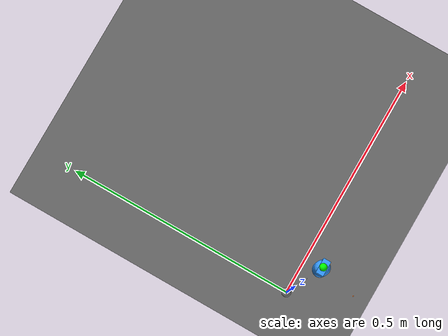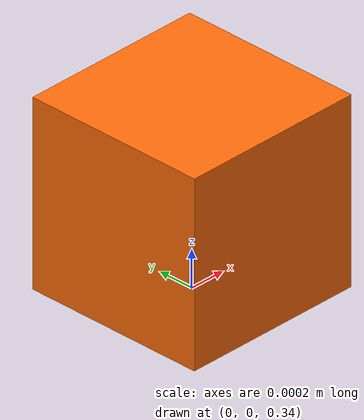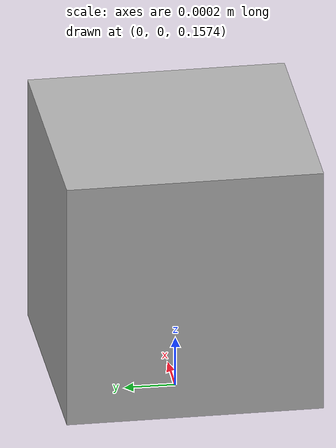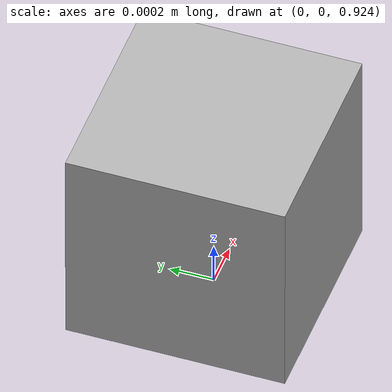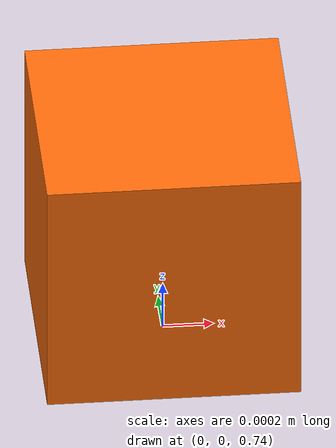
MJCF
<mujoco model="iiwa7_with_gripper">
  <option iterations="50" timestep="0.001" solver="PGS" gravity="0 0 -9.81"/>

  <compiler angle="radian" meshdir="meshes" eulerseq="zyx" autolimits="true"/>

  <default>
    <joint limited="true" damping="0.01" armature="0.01" frictionloss="0.01"/>
    <geom  condim="4" contype="1" conaffinity="15" friction="0.9 0.2 0.2" solref="0.001 2"/>
    <motor ctrllimited="true"/>
    <equality solref="0.001 2"/>
    <default class="visualgeom">
      <geom material="visualgeom" condim="1" contype="0" conaffinity="0"/>
    </default>
  </default>

  <worldbody>
    <light directional="true" diffuse="0.4 0.4 0.4" specular="0.1 0.1 0.1" pos="0 0 5.0" dir="0 0 -1" castshadow="false"/>
    <light directional="true" diffuse="0.6 0.6 0.6" specular="0.2 0.2 0.2" pos="0 0 4" dir="0 0 -1"/>
    <geom name="ground" type="plane" pos="0 0 0" size="100 100 0.001" quat="1 0 0 0" material="matplane" condim="3" conaffinity="15"/>
    <camera name="fixed" pos="0 -3.0 0.5005" xyaxes="1 0 0 0 0 1"/>
    <camera name="track" mode="trackcom" pos="0 -3.0 0.5005" xyaxes="1 0 0 0 0 1"/>

    <body name="root" pos="0 0 0.0005" quat="1 0 0 0">
      <freejoint name="root"/>
      <site name="imu" size="0.01" pos="0 0 0"/>

      <geom size="0.0005 0.0005 0.0005" type="box" rgba="0.7 0.7 0.7 1" contype="1" conaffinity="0" density="0" group="1" class="visualgeom"/>
      <geom type="box" rgba="0.7 0.7 0.7 1" size="0.0005 0.0005 0.0005"/>

      <body name="iiwa_link_1" pos="0 0 0.15">
        <inertial pos="0 -0.03 0.12" quat="0.428904 0.562175 -0.562175 0.428904" mass="3.4525" diaginertia="0.0218946 0.02183 0.00663837"/>
        <joint name="iiwa_joint_1" pos="0 0 0" axis="0 0 1" range="-2.96706 2.96706" actuatorfrcrange="-300 300" damping="0.5"/>
        <geom size="0.0005 0.0005 0.0005" pos="0 0 0.0075" type="box" rgba="0.7 0.7 0.7 1" contype="1" conaffinity="0" density="0" group="1" class="visualgeom"/>
        <geom type="box" rgba="0.7 0.7 0.7 1" size="0.0005 0.0005 0.0005" pos="0 0 0.0075"/>

        <body name="iiwa_link_2" pos="0 0 0.19" quat="0 0 0.707107 0.707107">
          <inertial pos="0.0003 0.059 0.042" quat="0.701371 0.0898824 0.0898824 0.701371" mass="3.4821" diaginertia="0.02179 0.0217049 0.00684512"/>
          <joint name="iiwa_joint_2" pos="0 0 0" axis="0 0 1" range="-2.0944 2.0944" actuatorfrcrange="-300 300" damping="0.5"/>
          <geom size="0.0005 0.0005 0.0005" type="box" rgba="1 0.423529 0.0392157 1" contype="1" conaffinity="0" density="0" group="1" class="visualgeom"/>
          <geom type="box" rgba="1 0.423529 0.0392157 1" size="0.0005 0.0005 0.0005"/>

          <body name="iiwa_link_3" pos="0 0.21 0" quat="0 0 0.707107 0.707107">
            <inertial pos="0 0.03 0.13" quat="0.56292 0.427927 -0.427927 0.56292" mass="4.05623" diaginertia="0.0321488 0.03204 0.00799117"/>
            <joint name="iiwa_joint_3" pos="0 0 0" axis="0 0 1" range="-2.96706 2.96706" actuatorfrcrange="-300 300" damping="0.5"/>
            <geom size="0.0005 0.0005 0.0005" pos="0 0 -0.026" type="box" rgba="0.7 0.7 0.7 1" contype="1" conaffinity="0" density="0" group="1" class="visualgeom"/>
            <geom type="box" rgba="0.7 0.7 0.7 1" size="0.0005 0.0005 0.0005" pos="0 0 -0.026"/>

            <body name="iiwa_link_4" pos="0 0 0.19" quat="0.707107 0.707107 0 0">
              <inertial pos="0 0.067 0.034" quat="0.991887 -0.127124 0 0" mass="3.4822" diaginertia="0.02178 0.0216947 0.00684029"/>
              <joint name="iiwa_joint_4" pos="0 0 0" axis="0 0 1" range="-2.0944 2.0944" actuatorfrcrange="-300 300" damping="0.5"/>
              <geom size="0.0005 0.0005 0.0005" type="box" rgba="1 0.423529 0.0392157 1" contype="1" conaffinity="0" density="0" group="1" class="visualgeom"/>
              <geom type="box" rgba="1 0.423529 0.0392157 1" size="0.0005 0.0005 0.0005"/>

              <body name="iiwa_link_5" pos="0 0.21 0" quat="0 0 0.707107 0.707107">
                <inertial pos="0.0001 0.021 0.076" quat="0.365352 0.605407 -0.605407 0.365352" mass="2.1633" diaginertia="0.0131987 0.01287 0.0036293"/>
                <joint name="iiwa_joint_5" pos="0 0 0" axis="0 0 1" range="-2.96706 2.96706" actuatorfrcrange="-300 300" damping="0.5"/>
                <geom size="0.0005 0.0005 0.0005" pos="0 0 -0.026" type="box" rgba="0.7 0.7 0.7 1" contype="1" conaffinity="0" density="0" group="1" class="visualgeom"/>
                <geom type="box" rgba="0.7 0.7 0.7 1" size="0.0005 0.0005 0.0005" pos="0 0 -0.026"/>

                <body name="iiwa_link_6" pos="0 0.0607 0.19" quat="0.707107 0.707107 0 0">
                  <inertial pos="0 0.0006 0.0004" quat="0.996112 0.088097 0 0" mass="2.3466" diaginertia="0.006509 0.00631585 0.00447015"/>
                  <joint name="iiwa_joint_6" pos="0 0 0" axis="0 0 1" range="-2.0944 2.0944" actuatorfrcrange="-300 300" damping="0.5"/>
                  <geom size="0.0005 0.0005 0.0005" type="box" rgba="1 0.423529 0.0392157 1" contype="1" conaffinity="0" density="0" group="1" class="visualgeom"/>
                  <geom type="box" rgba="1 0.423529 0.0392157 1" size="0.0005 0.0005 0.0005"/>

                  <body name="iiwa_link_7" pos="0 0.081 0.0607" quat="0 0 0.707107 0.707107">
                    <inertial pos="0 0 0.02" quat="0.923068 0 0 0.384636" mass="3.129" diaginertia="0.0152362 0.0140538 0.002872"/>
                    <joint name="iiwa_joint_7" pos="0 0 0" axis="0 0 1" range="-3.05433 3.05433" actuatorfrcrange="-300 300" damping="0.5"/>
                    <geom size="0.0005 0.0005 0.0005" pos="0 0 -0.0005" type="box" rgba="0.7 0.7 0.7 1" contype="1" conaffinity="0" density="0" group="1" class="visualgeom"/>
                    <geom type="box" rgba="0.7 0.7 0.7 1" size="0.0005 0.0005 0.0005" pos="0 0 -0.0005"/>

                    <!-- === 简易夹爪：放在末端连杆尖端，1 个铰接自由度表示开合量 === -->
                    <body name="gripper" pos="0 0 0.07">
                      <!-- 以小转角近似对指夹持；范围可根据需要调整 -->
                      <joint name="gripper_joint" type="hinge" pos="0 0 0" axis="0 1 0" range="-0.35 0.35" damping="0.01"/>
                      <!-- 可视化几何体（两片指爪的抽象表示） -->
                      <geom name="gripper_base" type="capsule" fromto="0 0 0  0 0 0.06" size="0.01" rgba="0.2 0.6 1 1" contype="0" conaffinity="0" density="0"/>
                      <geom name="finger_visual" type="box" pos="0 0 0.065" size="0.01 0.005 0.015" rgba="0.2 0.6 1 1" contype="0" conaffinity="0" density="0"/>
                      <site name="eef" pos="0 0 0.08" size="0.005" rgba="0 1 0 1"/>
                    </body>
                  </body>
                </body>
              </body>
            </body>
          </body>
        </body>
      </body>
    </body>
  </worldbody>

  <asset>
    <texture  name="texplane" type="2d" builtin="checker" rgb1=".0 .0 .0" rgb2=".8 .8 .8" width="100" height="100"/>
    <material name="matplane" reflectance="0." texture="texplane" texrepeat="1 1" texuniform="true"/>
    <material name="visualgeom" rgba="0.5 0.9 0.2 1"/>
  </asset>

  <actuator>
    <motor name="iiwa_joint_1" joint="iiwa_joint_1" ctrllimited="true" ctrlrange="-300 300" gear="1"/>
    <motor name="iiwa_joint_2" joint="iiwa_joint_2" ctrllimited="true" ctrlrange="-300 300" gear="1"/>
    <motor name="iiwa_joint_3" joint="iiwa_joint_3" ctrllimited="true" ctrlrange="-300 300" gear="1"/>
    <motor name="iiwa_joint_4" joint="iiwa_joint_4" ctrllimited="true" ctrlrange="-300 300" gear="1"/>
    <motor name="iiwa_joint_5" joint="iiwa_joint_5" ctrllimited="true" ctrlrange="-300 300" gear="1"/>
    <motor name="iiwa_joint_6" joint="iiwa_joint_6" ctrllimited="true" ctrlrange="-300 300" gear="1"/>
    <motor name="iiwa_joint_7" joint="iiwa_joint_7" ctrllimited="true" ctrlrange="-300 300" gear="1"/>

    <!-- 夹爪单通道执行器：用于 RL 的第 4 维动作（开合量） -->
    <motor name="gripper_joint" joint="gripper_joint" ctrllimited="true" ctrlrange="-1 1" gear="1"/>
  </actuator>

  <sensor>
    <actuatorpos name="iiwa_joint_1_p" actuator="iiwa_joint_1"/>
    <actuatorvel name="iiwa_joint_1_v" actuator="iiwa_joint_1"/>
    <actuatorfrc name="iiwa_joint_1_f" actuator="iiwa_joint_1" noise="0.001"/>

    <actuatorpos name="iiwa_joint_2_p" actuator="iiwa_joint_2"/>
    <actuatorvel name="iiwa_joint_2_v" actuator="iiwa_joint_2"/>
    <actuatorfrc name="iiwa_joint_2_f" actuator="iiwa_joint_2" noise="0.001"/>

    <actuatorpos name="iiwa_joint_3_p" actuator="iiwa_joint_3"/>
    <actuatorvel name="iiwa_joint_3_v" actuator="iiwa_joint_3"/>
    <actuatorfrc name="iiwa_joint_3_f" actuator="iiwa_joint_3" noise="0.001"/>

    <actuatorpos name="iiwa_joint_4_p" actuator="iiwa_joint_4"/>
    <actuatorvel name="iiwa_joint_4_v" actuator="iiwa_joint_4"/>
    <actuatorfrc name="iiwa_joint_4_f" actuator="iiwa_joint_4" noise="0.001"/>

    <actuatorpos name="iiwa_joint_5_p" actuator="iiwa_joint_5"/>
    <actuatorvel name="iiwa_joint_5_v" actuator="iiwa_joint_5"/>
    <actuatorfrc name="iiwa_joint_5_f" actuator="iiwa_joint_5" noise="0.001"/>

    <actuatorpos name="iiwa_joint_6_p" actuator="iiwa_joint_6"/>
    <actuatorvel name="iiwa_joint_6_v" actuator="iiwa_joint_6"/>
    <actuatorfrc name="iiwa_joint_6_f" actuator="iiwa_joint_6" noise="0.001"/>

    <actuatorpos name="iiwa_joint_7_p" actuator="iiwa_joint_7"/>
    <actuatorvel name="iiwa_joint_7_v" actuator="iiwa_joint_7"/>
    <actuatorfrc name="iiwa_joint_7_f" actuator="iiwa_joint_7" noise="0.001"/>

    <!-- 可选：记录夹爪状态，便于拼观测的第 8 维 -->
    <actuatorpos name="gripper_joint_p" actuator="gripper_joint"/>
    <framequat name="orientation" objtype="site" noise="0.001" objname="imu"/>
    <gyro name="angular-velocity" site="imu" noise="0.005" cutoff="34.9"/>
  </sensor>
</mujoco>
